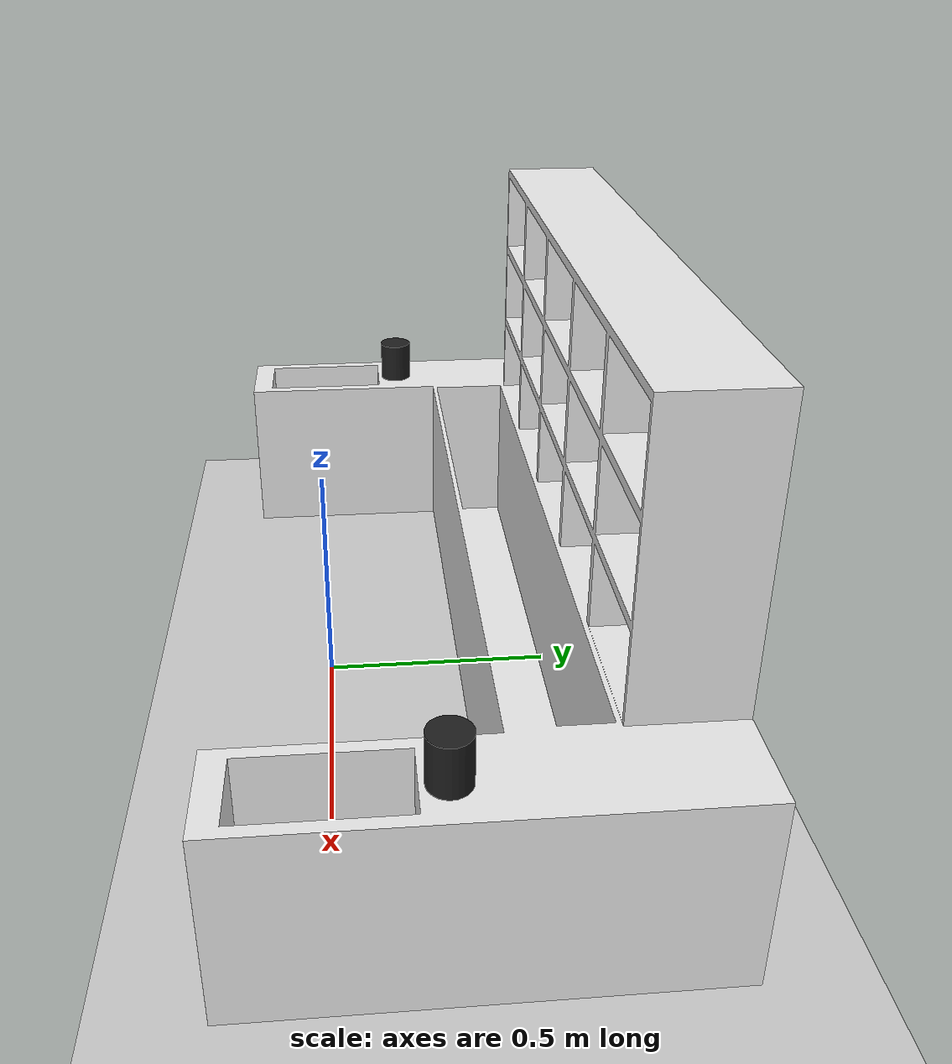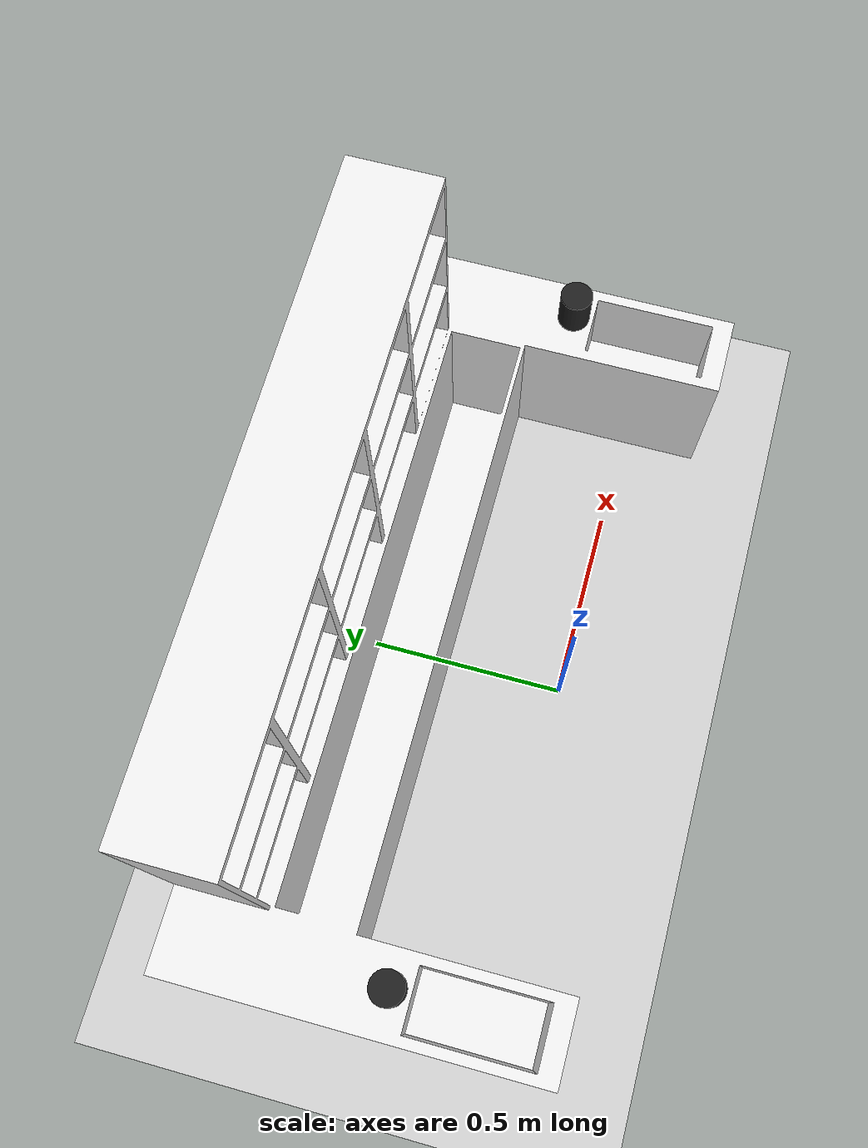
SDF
<sdf version="1.7">
 <world name="default">
  <light name="sun" type="directional">
   <pose>0 0 10 0 -0 0</pose>
   <diffuse>0.8 0.8 0.8 1</diffuse>
   <specular>0.2 0.2 0.2 1</specular>
   <attenuation>
    <range>1000</range>
    <constant>0.9</constant>
    <linear>0.01</linear>
    <quadratic>0.001</quadratic>
   </attenuation>
   <direction>-0.5 0.1 -0.9</direction>
   <spot><inner_angle>0</inner_angle><outer_angle>0</outer_angle><falloff>0</falloff></spot>
  </light>
  <model name="ground_plane">
   <static>1</static>
   <link name="link">
    <collision name="collision">
     <geometry><plane><normal>0 0 1</normal><size>100 100</size></plane></geometry>
     <surface><friction><ode><mu>100</mu><mu2>50</mu2></ode></friction></surface>
    </collision>
    <visual name="visual">
     <cast_shadows>0</cast_shadows>
     <geometry><plane><normal>0 0 1</normal><size>100 100</size></plane></geometry>
     <material>
      <script><uri>file://media/materials/scripts/gazebo.material</uri><name>Gazebo/Grey</name></script>
     </material>
    </visual>
   </link>
  </model>
  <gravity>0 0 -9.8</gravity>
  <magnetic_field>6e-06 2.3e-05 -4.2e-05</magnetic_field>
  <atmosphere type="adiabatic"/>
  <physics type="ode">
   <max_step_size>0.001</max_step_size>
   <real_time_factor>1</real_time_factor>
   <real_time_update_rate>1000</real_time_update_rate>
  </physics>
  <scene><ambient>0.4 0.4 0.4 1</ambient><background>0.7 0.7 0.7 1</background><shadows>1</shadows></scene>
  <audio><device>default</device></audio>
  <spherical_coordinates>
   <surface_model>EARTH_WGS84</surface_model>
   <latitude_deg>0</latitude_deg>
   <longitude_deg>0</longitude_deg>
   <elevation>0</elevation>
   <heading_deg>0</heading_deg>
  </spherical_coordinates>
  <model name="environment">
   <joint name="fixed_shelf" type="fixed">
    <pose relative_to="__model__">0 0 0 0 -0 0</pose>
    <parent>world</parent>
    <child>shelf</child>
   </joint>
   <link name="shelf">
    <pose relative_to="fixed_shelf">0 0 0 0 -0 0</pose>
    <inertial>
     <pose>0 0.3 0 0 -0 0</pose>
     <mass>316</mass>
     <inertia>
      <ixx>68.8</ixx>
      <ixy>7.56</ixy>
      <ixz>-0.58</ixz>
      <iyy>148.1</iyy>
      <iyz>-6.9</iyz>
      <izz>182.29</izz>
     </inertia>
    </inertial>
    <collision name="shelf_collision">
     <pose>0 0.3 0 0 -0 0</pose>
     <geometry><mesh><scale>1 1 1</scale><uri>model://robot_description/meshes/shelf.STL</uri></mesh></geometry>
    </collision>
    <visual name="shelf_visual">
     <pose>0 0.3 0 0 -0 0</pose>
     <geometry><mesh><scale>1 1 1</scale><uri>model://robot_description/meshes/shelf.STL</uri></mesh></geometry>
     <material>
      <script><name>Gazebo/White</name><uri>file://media/materials/scripts/gazebo.material</uri></script>
     </material>
    </visual>
   </link>
  </model>
  <model name="cylinder_object">
   <joint name="objL_prisX" type="prismatic">
    <pose relative_to="__model__">0.85 0.20 0.45 0 -0 0</pose>
    <parent>world</parent>
    <child>objL_slideX</child>
    <axis>
     <xyz>1 0 0</xyz>
     <limit><lower>-0.8</lower><upper>0.8</upper><effort>0</effort><velocity>0</velocity></limit>
     <dynamics>
      <damping>0</damping>
      <friction>0</friction>
      <spring_reference>0</spring_reference>
      <spring_stiffness>0</spring_stiffness>
     </dynamics>
    </axis>
   </joint>
   <link name="objL_slideX">
    <pose relative_to="objL_prisX">0 0 0 0 -0 0</pose>
    <inertial>
     <mass>0.01</mass>
     <inertia><ixx>0.01</ixx><ixy>0</ixy><ixz>0</ixz><iyy>0.01</iyy><iyz>0</iyz><izz>0.01</izz></inertia>
    </inertial>
   </link>
   <joint name="objL_prisY" type="prismatic">
    <pose relative_to="objL_slideX">0 0 0 0 -0 0</pose>
    <parent>objL_slideX</parent>
    <child>objL_slideY</child>
    <axis>
     <xyz>0 1 0</xyz>
     <limit><lower>-0.8</lower><upper>0.8</upper><effort>0</effort><velocity>0</velocity></limit>
     <dynamics>
      <damping>0</damping>
      <friction>0</friction>
      <spring_reference>0</spring_reference>
      <spring_stiffness>0</spring_stiffness>
     </dynamics>
    </axis>
   </joint>
   <link name="objL_slideY">
    <pose relative_to="objL_prisY">0 0 0 0 -0 0</pose>
    <inertial>
     <mass>0.01</mass>
     <inertia><ixx>0.01</ixx><ixy>0</ixy><ixz>0</ixz><iyy>0.01</iyy><iyz>0</iyz><izz>0.01</izz></inertia>
    </inertial>
   </link>
   <joint name="objL_prisZ" type="prismatic">
    <pose relative_to="objL_slideY">0 0 0 0 -0 0</pose>
    <parent>objL_slideY</parent>
    <child>objL_slideZ</child>
    <axis>
     <xyz>0 0 1</xyz>
     <limit><lower>-0.8</lower><upper>0.8</upper><effort>0</effort><velocity>0</velocity></limit>
     <dynamics>
      <damping>0</damping>
      <friction>0</friction>
      <spring_reference>0</spring_reference>
      <spring_stiffness>0</spring_stiffness>
     </dynamics>
    </axis>
   </joint>
   <link name="objL_slideZ">
    <pose relative_to="objL_prisZ">0 0 0 0 -0 0</pose>
    <inertial>
     <mass>0.01</mass>
     <inertia><ixx>0.01</ixx><ixy>0</ixy><ixz>0</ixz><iyy>0.01</iyy><iyz>0</iyz><izz>0.01</izz></inertia>
    </inertial>
   </link>
   <joint name="objL_revolX" type="revolute">
    <pose relative_to="objL_slideZ">0 0 0 0 -0 0</pose>
    <parent>objL_slideZ</parent>
    <child>objL_rotateX</child>
    <axis>
     <xyz>1 0 0</xyz>
     <limit><lower>-62.8319</lower><upper>62.8319</upper><effort>0</effort><velocity>0</velocity></limit>
     <dynamics>
      <damping>0</damping>
      <friction>0</friction>
      <spring_reference>0</spring_reference>
      <spring_stiffness>0</spring_stiffness>
     </dynamics>
    </axis>
   </joint>
   <link name="objL_rotateX">
    <pose relative_to="objL_revolX">0 0 0 0 -0 0</pose>
    <inertial>
     <mass>0.01</mass>
     <inertia><ixx>0.01</ixx><ixy>0</ixy><ixz>0</ixz><iyy>0.01</iyy><iyz>0</iyz><izz>0.01</izz></inertia>
    </inertial>
   </link>
   <joint name="objL_revolY" type="revolute">
    <pose relative_to="objL_rotateX">0 0 0 0 -0 0</pose>
    <parent>objL_rotateX</parent>
    <child>objL_rotateY</child>
    <axis>
     <xyz>0 1 0</xyz>
     <limit><lower>-62.8319</lower><upper>62.8319</upper><effort>0</effort><velocity>0</velocity></limit>
     <dynamics>
      <damping>0</damping>
      <friction>0</friction>
      <spring_reference>0</spring_reference>
      <spring_stiffness>0</spring_stiffness>
     </dynamics>
    </axis>
   </joint>
   <link name="objL_rotateY">
    <pose relative_to="objL_revolY">0 0 0 0 -0 0</pose>
    <inertial>
     <mass>0.01</mass>
     <inertia><ixx>0.01</ixx><ixy>0</ixy><ixz>0</ixz><iyy>0.01</iyy><iyz>0</iyz><izz>0.01</izz></inertia>
    </inertial>
   </link>
   <joint name="objL_revolZ" type="revolute">
    <pose relative_to="objL_rotateY">0 0 0 0 -0 0</pose>
    <parent>objL_rotateY</parent>
    <child>objL</child>
    <axis>
     <xyz>0 0 1</xyz>
     <limit><lower>-62.8319</lower><upper>62.8319</upper><effort>0</effort><velocity>0</velocity></limit>
     <dynamics>
      <damping>0</damping>
      <friction>0</friction>
      <spring_reference>0</spring_reference>
      <spring_stiffness>0</spring_stiffness>
     </dynamics>
    </axis>
   </joint>
   <link name="objL">
    <pose relative_to="objL_revolZ">0 0 0 0 -0 0</pose>
    <inertial>
     <mass>0.01</mass>
     <inertia>
      <ixx>1.23333e-05</ixx>
      <ixy>0</ixy>
      <ixz>0</ixz>
      <iyy>1.23333e-05</iyy>
      <iyz>0</iyz>
      <izz>8e-06</izz>
     </inertia>
    </inertial>
    <collision name="objL_collision">
     <geometry><cylinder><length>0.1</length><radius>0.04</radius></cylinder></geometry>
    </collision>
    <visual name="objL_visual">
     <geometry><cylinder><length>0.1</length><radius>0.04</radius></cylinder></geometry>
     <material>
      <script><name>Gazebo/Black</name><uri>file://media/materials/scripts/gazebo.material</uri></script>
     </material>
    </visual>
   </link>
   <joint name="objR_prisX" type="prismatic">
    <pose relative_to="__model__">-0.85 0.20 0.45 0 -0 0</pose>
    <parent>world</parent>
    <child>objR_slideX</child>
    <axis>
     <xyz>1 0 0</xyz>
     <limit><lower>-0.8</lower><upper>0.8</upper><effort>0</effort><velocity>0</velocity></limit>
     <dynamics>
      <damping>0</damping>
      <friction>0</friction>
      <spring_reference>0</spring_reference>
      <spring_stiffness>0</spring_stiffness>
     </dynamics>
    </axis>
   </joint>
   <link name="objR_slideX">
    <pose relative_to="objR_prisX">0 0 0 0 -0 0</pose>
    <inertial>
     <mass>0.01</mass>
     <inertia><ixx>0.01</ixx><ixy>0</ixy><ixz>0</ixz><iyy>0.01</iyy><iyz>0</iyz><izz>0.01</izz></inertia>
    </inertial>
   </link>
   <joint name="objR_prisY" type="prismatic">
    <pose relative_to="objR_slideX">0 0 0 0 -0 0</pose>
    <parent>objR_slideX</parent>
    <child>objR_slideY</child>
    <axis>
     <xyz>0 1 0</xyz>
     <limit><lower>-0.8</lower><upper>0.8</upper><effort>0</effort><velocity>0</velocity></limit>
     <dynamics>
      <damping>0</damping>
      <friction>0</friction>
      <spring_reference>0</spring_reference>
      <spring_stiffness>0</spring_stiffness>
     </dynamics>
    </axis>
   </joint>
   <link name="objR_slideY">
    <pose relative_to="objR_prisY">0 0 0 0 -0 0</pose>
    <inertial>
     <mass>0.01</mass>
     <inertia><ixx>0.01</ixx><ixy>0</ixy><ixz>0</ixz><iyy>0.01</iyy><iyz>0</iyz><izz>0.01</izz></inertia>
    </inertial>
   </link>
   <joint name="objR_prisZ" type="prismatic">
    <pose relative_to="objR_slideY">0 0 0 0 -0 0</pose>
    <parent>objR_slideY</parent>
    <child>objR_slideZ</child>
    <axis>
     <xyz>0 0 1</xyz>
     <limit><lower>-0.8</lower><upper>0.8</upper><effort>0</effort><velocity>0</velocity></limit>
     <dynamics>
      <damping>0</damping>
      <friction>0</friction>
      <spring_reference>0</spring_reference>
      <spring_stiffness>0</spring_stiffness>
     </dynamics>
    </axis>
   </joint>
   <link name="objR_slideZ">
    <pose relative_to="objR_prisZ">0 0 0 0 -0 0</pose>
    <inertial>
     <mass>0.01</mass>
     <inertia><ixx>0.01</ixx><ixy>0</ixy><ixz>0</ixz><iyy>0.01</iyy><iyz>0</iyz><izz>0.01</izz></inertia>
    </inertial>
   </link>
   <joint name="objR_revolX" type="revolute">
    <pose relative_to="objR_slideZ">0 0 0 0 -0 0</pose>
    <parent>objR_slideZ</parent>
    <child>objR_rotateX</child>
    <axis>
     <xyz>1 0 0</xyz>
     <limit><lower>-62.8319</lower><upper>62.8319</upper><effort>0</effort><velocity>0</velocity></limit>
     <dynamics>
      <damping>0</damping>
      <friction>0</friction>
      <spring_reference>0</spring_reference>
      <spring_stiffness>0</spring_stiffness>
     </dynamics>
    </axis>
   </joint>
   <link name="objR_rotateX">
    <pose relative_to="objR_revolX">0 0 0 0 -0 0</pose>
    <inertial>
     <mass>0.01</mass>
     <inertia><ixx>0.01</ixx><ixy>0</ixy><ixz>0</ixz><iyy>0.01</iyy><iyz>0</iyz><izz>0.01</izz></inertia>
    </inertial>
   </link>
   <joint name="objR_revolY" type="revolute">
    <pose relative_to="objR_rotateX">0 0 0 0 -0 0</pose>
    <parent>objR_rotateX</parent>
    <child>objR_rotateY</child>
    <axis>
     <xyz>0 1 0</xyz>
     <limit><lower>-62.8319</lower><upper>62.8319</upper><effort>0</effort><velocity>0</velocity></limit>
     <dynamics>
      <damping>0</damping>
      <friction>0</friction>
      <spring_reference>0</spring_reference>
      <spring_stiffness>0</spring_stiffness>
     </dynamics>
    </axis>
   </joint>
   <link name="objR_rotateY">
    <pose relative_to="objR_revolY">0 0 0 0 -0 0</pose>
    <inertial>
     <mass>0.01</mass>
     <inertia><ixx>0.01</ixx><ixy>0</ixy><ixz>0</ixz><iyy>0.01</iyy><iyz>0</iyz><izz>0.01</izz></inertia>
    </inertial>
   </link>
   <joint name="objR_revolZ" type="revolute">
    <pose relative_to="objR_rotateY">0 0 0 0 -0 0</pose>
    <parent>objR_rotateY</parent>
    <child>objR</child>
    <axis>
     <xyz>0 0 1</xyz>
     <limit><lower>-62.8319</lower><upper>62.8319</upper><effort>0</effort><velocity>0</velocity></limit>
     <dynamics>
      <damping>0</damping>
      <friction>0</friction>
      <spring_reference>0</spring_reference>
      <spring_stiffness>0</spring_stiffness>
     </dynamics>
    </axis>
   </joint>
   <link name="objR">
    <pose relative_to="objR_revolZ">0 0 0 0 -0 0</pose>
    <inertial>
     <mass>0.01</mass>
     <inertia>
      <ixx>1.23333e-05</ixx>
      <ixy>0</ixy>
      <ixz>0</ixz>
      <iyy>1.23333e-05</iyy>
      <iyz>0</iyz>
      <izz>8e-06</izz>
     </inertia>
    </inertial>
    <collision name="objR_collision">
     <geometry><cylinder><length>0.1</length><radius>0.04</radius></cylinder></geometry>
    </collision>
    <visual name="objR_visual">
     <geometry><cylinder><length>0.1</length><radius>0.04</radius></cylinder></geometry>
     <material>
      <script><name>Gazebo/Black</name><uri>file://media/materials/scripts/gazebo.material</uri></script>
     </material>
    </visual>
   </link>
   <static>0</static>
   <plugin name="gazebo_ros_joint_state_publisher_cylinder" filename="libgazebo_ros_joint_state_publisher.so">
    <joint_name>objR_prisX</joint_name>
    <joint_name>objR_prisY</joint_name>
    <joint_name>objR_prisZ</joint_name>
    <joint_name>objR_revolX</joint_name>
    <joint_name>objR_revolY</joint_name>
    <joint_name>objR_revolZ</joint_name>
    <joint_name>objL_prisX</joint_name>
    <joint_name>objL_prisY</joint_name>
    <joint_name>objL_prisZ</joint_name>
    <joint_name>objL_revolX</joint_name>
    <joint_name>objL_revolY</joint_name>
    <joint_name>objL_revolZ</joint_name>
   </plugin>
   <pose>0.010106 -0 0 0 -0 0</pose>
  </model>
 </world>
</sdf>
